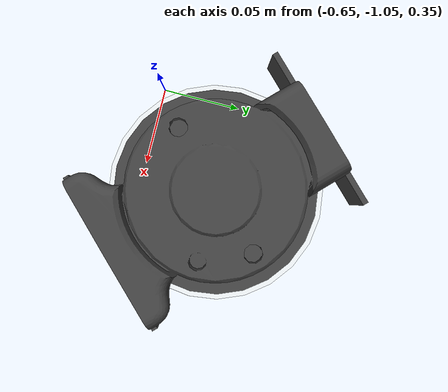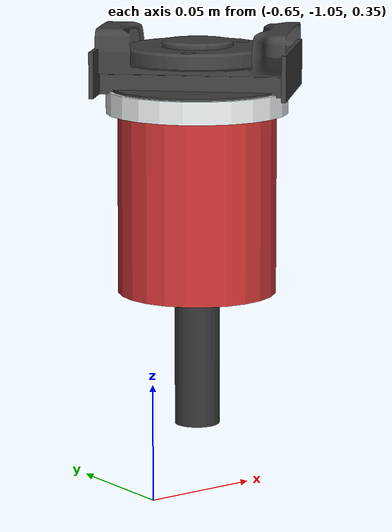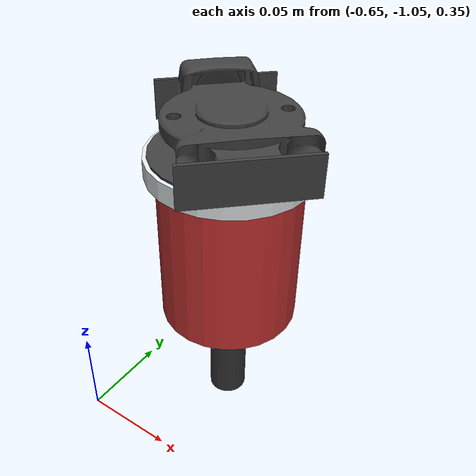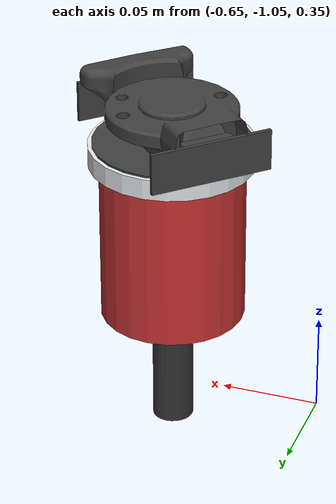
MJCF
<?xml version='1.0' encoding='utf-8'?>
<mujoco>
  <include file="adapter_assets.xml"/>

  <asset>

    <material name="franka_white"     rgba="1 1 1 1"/>
    <material name="franka_off_white" rgba="0.901961 0.921569 0.929412 1"/>
    <material name="franka_black"     rgba="0.25 0.25 0.25 1"/>
    <mesh name="franka_hand_c"  file="/home/mourya/one_hand_ws/src/mujoco_menagerie/franka_emika_panda/assets/hand.stl"/>
    <mesh name="franka_hand_0"  file="/home/mourya/one_hand_ws/src/mujoco_menagerie/franka_emika_panda/assets/hand_0.obj"/>
    <mesh name="franka_hand_1"  file="/home/mourya/one_hand_ws/src/mujoco_menagerie/franka_emika_panda/assets/hand_1.obj"/>
    <mesh name="franka_hand_2"  file="/home/mourya/one_hand_ws/src/mujoco_menagerie/franka_emika_panda/assets/hand_2.obj"/>
    <mesh name="franka_hand_3"  file="/home/mourya/one_hand_ws/src/mujoco_menagerie/franka_emika_panda/assets/hand_3.obj"/>
    <mesh name="franka_hand_4"  file="/home/mourya/one_hand_ws/src/mujoco_menagerie/franka_emika_panda/assets/hand_4.obj"/>
    </asset>

  <worldbody>
    <body name="tool_physical_cobot_pump" pos="-0.59 -1.0 0.533" quat="0.9238795 0 0 0.3826834">
      <freejoint/>
      <inertial mass="2.0" pos="0 0 -0.1" diaginertia="0.02 0.02 0.01"/>

      <!-- 1. Custom Male Adapter (Flipped 180deg so flat base is at Z=-0.019, pegs pointing UP at Z=0 towards bare robot wrist) -->
      <body name="custom_adapter" pos="0 0 0" quat="0 1 0 0">
        <geom type="mesh" mesh="franka_adapter_male" material="franka_black" contype="0" conaffinity="0" group="2"/>
        <geom type="cylinder" size="0.038 0.001" pos="0 0 0.019" material="franka_black" contype="0" conaffinity="0" group="2"/>
        <geom type="box" size="0.03 0.001 0.01" pos="0 -0.0415 0.01" material="franka_black" contype="0" conaffinity="0" group="2"/>
        <geom type="box" size="0.03 0.001 0.01" pos="0 0.0415 0.01" material="franka_black" contype="0" conaffinity="0" group="2"/>
      </body>

      <!-- 2. Flat Plane Spacer -->
      <geom type="cylinder" size="0.04 0.005" pos="0 0 -0.024" material="franka_off_white" contype="1" conaffinity="1"/>

      <!-- 3. Cobot Pump Body -->
      <!-- The pump's top is at its local Z=0. We place it at Z=-0.029 to touch the bottom of the spacer plane. -->
      <body name="cobot_pump_tool_connector" pos="0 0 -0.029">
        <geom type="cylinder" size="0.035 0.04" pos="0 0 -0.04" rgba="0.8 0.2 0.2 1" contype="1" conaffinity="1" mass="0.5"/>
        <geom type="cylinder" size="0.01  0.03" pos="0 0 -0.11" rgba="0.2 0.2 0.2 1" contype="1" conaffinity="1"/>
      </body>
    </body>
  </worldbody>

</mujoco>

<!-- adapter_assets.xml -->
<mujoco>
  <asset>
    <!-- Custom Composite Male Adapter Mesh -->
    <mesh name="franka_adapter_male" file="/home/mourya/one_hand_ws/src/one_hand_interface/urdf/external_tools/franka_adapter_male_final.obj"/>
  </asset>
</mujoco>
